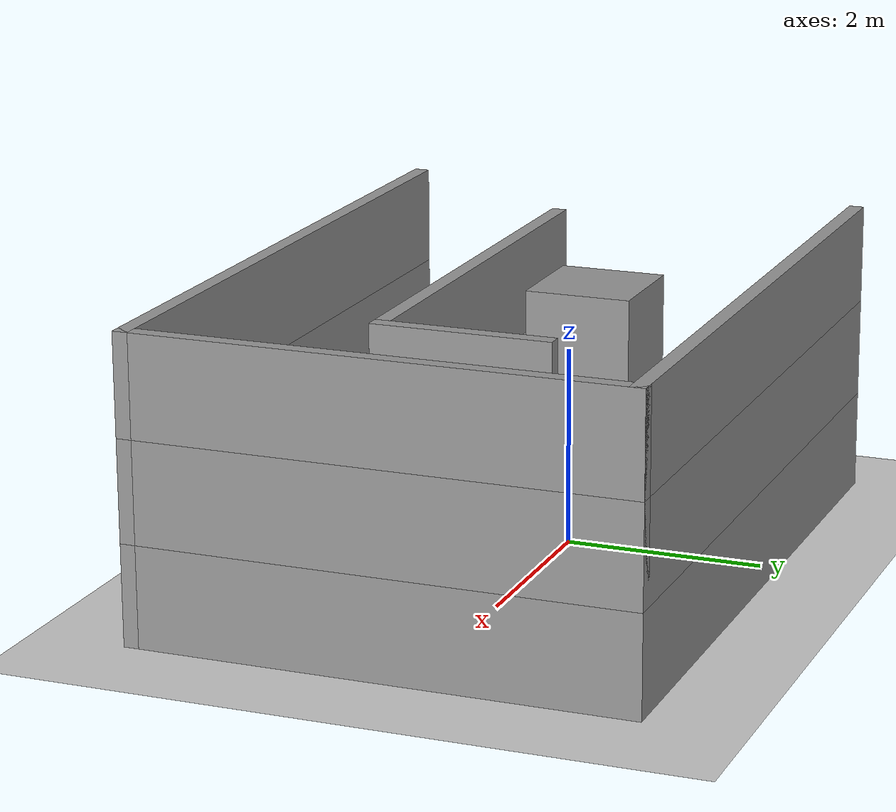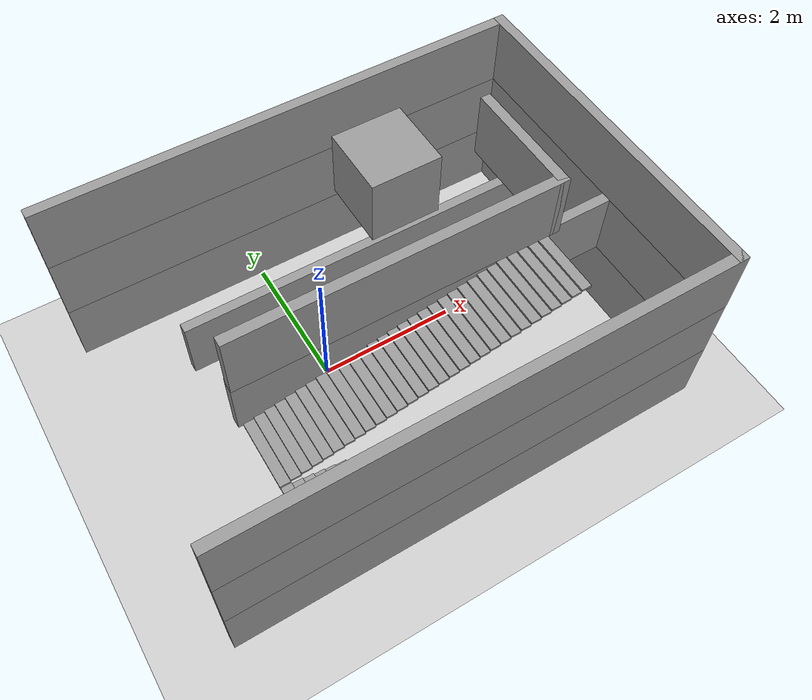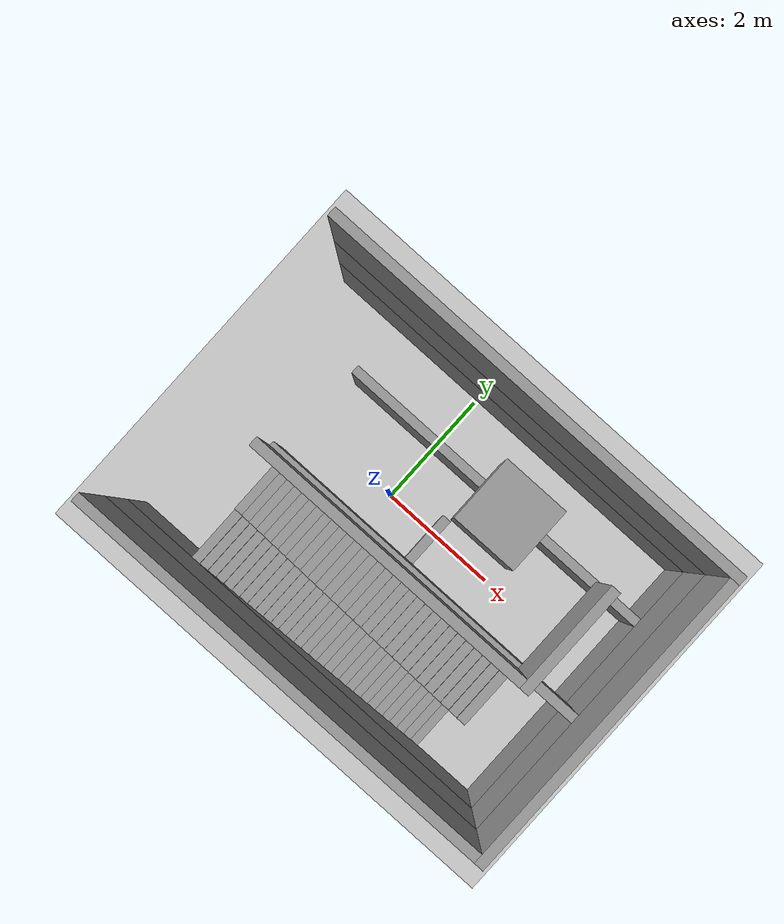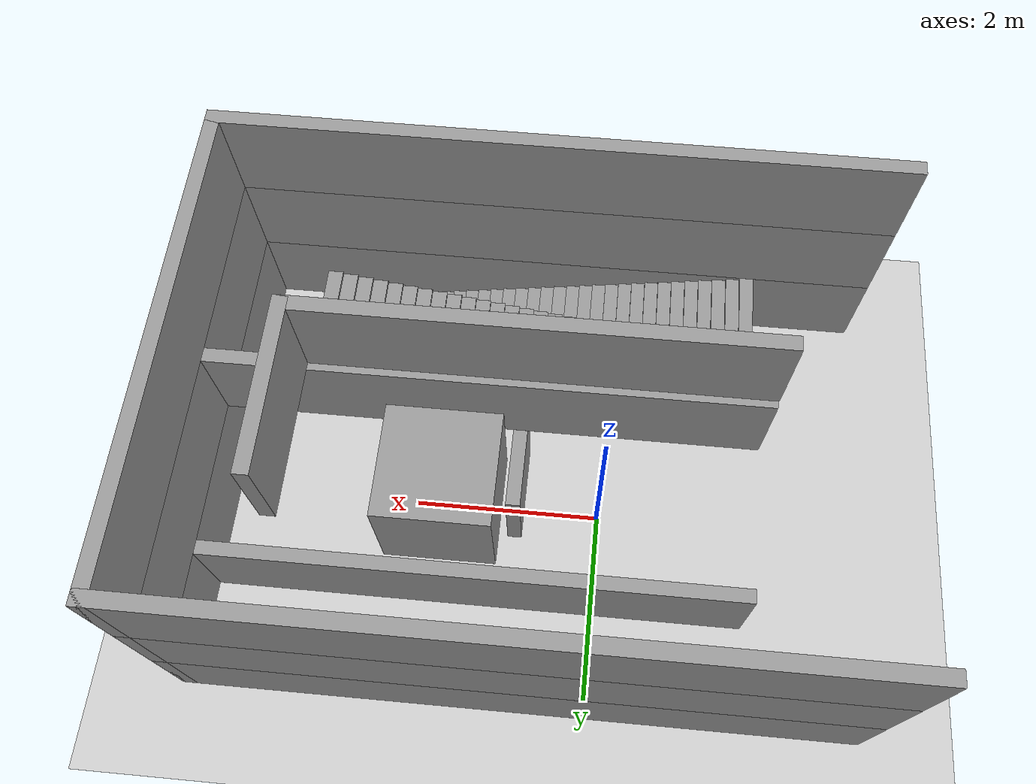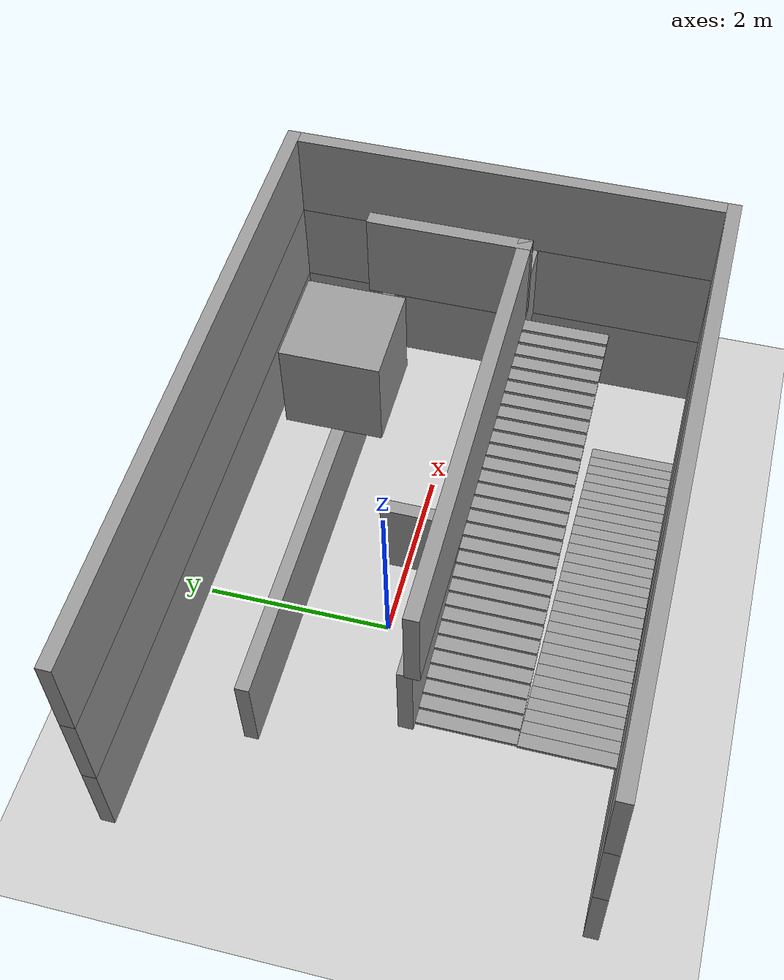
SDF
<sdf version="1.7">
 <world name="default">
  <model name="ground_plane">
   <static>1</static>
   <link name="link">
    <collision name="collision">
     <geometry><plane><normal>0 0 1</normal><size>100 100</size></plane></geometry>
     <surface>
      <contact><collide_bitmask>65535</collide_bitmask></contact>
      <friction><ode><mu>100</mu><mu2>50</mu2></ode></friction>
     </surface>
    </collision>
    <visual name="visual">
     <cast_shadows>0</cast_shadows>
     <geometry><plane><normal>0 0 1</normal><size>100 100</size></plane></geometry>
     <material>
      <script><uri>file://media/materials/scripts/gazebo.material</uri><name>Gazebo/Grey</name></script>
     </material>
    </visual>
   </link>
  </model>
  <model name="3F_building">
   <pose>0.674929 -0.295159 0 0 -0 0</pose>
   <link name="Stairs_7">
    <visual name="Stairs_7_Visual_0">
     <pose>2.21031 -1.90636 0.016667 0 -0 -1.5708</pose>
     <geometry><box><size>1 0.15 0.033333</size></box></geometry>
     <material>
      <script><uri>file://media/materials/scripts/gazebo.material</uri><name>Gazebo/Grey</name></script>
      <ambient>1 1 1 1</ambient>
     </material>
     <meta><layer>0</layer></meta>
    </visual>
    <collision name="Stairs_7_Collision_0">
     <geometry><box><size>1 0.15 0.033333</size></box></geometry>
     <pose>2.21031 -1.90636 0.016667 0 -0 -1.5708</pose>
    </collision>
    <visual name="Stairs_7_Visual_1">
     <pose>2.06031 -1.90636 0.05 0 -0 -1.5708</pose>
     <geometry><box><size>1 0.15 0.033333</size></box></geometry>
     <material>
      <script><uri>file://media/materials/scripts/gazebo.material</uri><name>Gazebo/Grey</name></script>
      <ambient>1 1 1 1</ambient>
     </material>
     <meta><layer>0</layer></meta>
    </visual>
    <collision name="Stairs_7_Collision_1">
     <geometry><box><size>1 0.15 0.033333</size></box></geometry>
     <pose>2.06031 -1.90636 0.05 0 -0 -1.5708</pose>
    </collision>
    <visual name="Stairs_7_Visual_2">
     <pose>1.91031 -1.90636 0.083333 0 -0 -1.5708</pose>
     <geometry><box><size>1 0.15 0.033333</size></box></geometry>
     <material>
      <script><uri>file://media/materials/scripts/gazebo.material</uri><name>Gazebo/Grey</name></script>
      <ambient>1 1 1 1</ambient>
     </material>
     <meta><layer>0</layer></meta>
    </visual>
    <collision name="Stairs_7_Collision_2">
     <geometry><box><size>1 0.15 0.033333</size></box></geometry>
     <pose>1.91031 -1.90636 0.083333 0 -0 -1.5708</pose>
    </collision>
    <visual name="Stairs_7_Visual_3">
     <pose>1.76031 -1.90636 0.116667 0 -0 -1.5708</pose>
     <geometry><box><size>1 0.15 0.033333</size></box></geometry>
     <material>
      <script><uri>file://media/materials/scripts/gazebo.material</uri><name>Gazebo/Grey</name></script>
      <ambient>1 1 1 1</ambient>
     </material>
     <meta><layer>0</layer></meta>
    </visual>
    <collision name="Stairs_7_Collision_3">
     <geometry><box><size>1 0.15 0.033333</size></box></geometry>
     <pose>1.76031 -1.90636 0.116667 0 -0 -1.5708</pose>
    </collision>
    <visual name="Stairs_7_Visual_4">
     <pose>1.61031 -1.90636 0.15 0 -0 -1.5708</pose>
     <geometry><box><size>1 0.15 0.033333</size></box></geometry>
     <material>
      <script><uri>file://media/materials/scripts/gazebo.material</uri><name>Gazebo/Grey</name></script>
      <ambient>1 1 1 1</ambient>
     </material>
     <meta><layer>0</layer></meta>
    </visual>
    <collision name="Stairs_7_Collision_4">
     <geometry><box><size>1 0.15 0.033333</size></box></geometry>
     <pose>1.61031 -1.90636 0.15 0 -0 -1.5708</pose>
    </collision>
    <visual name="Stairs_7_Visual_5">
     <pose>1.46031 -1.90636 0.183333 0 -0 -1.5708</pose>
     <geometry><box><size>1 0.15 0.033333</size></box></geometry>
     <material>
      <script><uri>file://media/materials/scripts/gazebo.material</uri><name>Gazebo/Grey</name></script>
      <ambient>1 1 1 1</ambient>
     </material>
     <meta><layer>0</layer></meta>
    </visual>
    <collision name="Stairs_7_Collision_5">
     <geometry><box><size>1 0.15 0.033333</size></box></geometry>
     <pose>1.46031 -1.90636 0.183333 0 -0 -1.5708</pose>
    </collision>
    <visual name="Stairs_7_Visual_6">
     <pose>1.31031 -1.90636 0.216667 0 -0 -1.5708</pose>
     <geometry><box><size>1 0.15 0.033333</size></box></geometry>
     <material>
      <script><uri>file://media/materials/scripts/gazebo.material</uri><name>Gazebo/Grey</name></script>
      <ambient>1 1 1 1</ambient>
     </material>
     <meta><layer>0</layer></meta>
    </visual>
    <collision name="Stairs_7_Collision_6">
     <geometry><box><size>1 0.15 0.033333</size></box></geometry>
     <pose>1.31031 -1.90636 0.216667 0 -0 -1.5708</pose>
    </collision>
    <visual name="Stairs_7_Visual_7">
     <pose>1.16031 -1.90636 0.25 0 -0 -1.5708</pose>
     <geometry><box><size>1 0.15 0.033333</size></box></geometry>
     <material>
      <script><uri>file://media/materials/scripts/gazebo.material</uri><name>Gazebo/Grey</name></script>
      <ambient>1 1 1 1</ambient>
     </material>
     <meta><layer>0</layer></meta>
    </visual>
    <collision name="Stairs_7_Collision_7">
     <geometry><box><size>1 0.15 0.033333</size></box></geometry>
     <pose>1.16031 -1.90636 0.25 0 -0 -1.5708</pose>
    </collision>
    <visual name="Stairs_7_Visual_8">
     <pose>1.01031 -1.90636 0.283333 0 -0 -1.5708</pose>
     <geometry><box><size>1 0.15 0.033333</size></box></geometry>
     <material>
      <script><uri>file://media/materials/scripts/gazebo.material</uri><name>Gazebo/Grey</name></script>
      <ambient>1 1 1 1</ambient>
     </material>
     <meta><layer>0</layer></meta>
    </visual>
    <collision name="Stairs_7_Collision_8">
     <geometry><box><size>1 0.15 0.033333</size></box></geometry>
     <pose>1.01031 -1.90636 0.283333 0 -0 -1.5708</pose>
    </collision>
    <visual name="Stairs_7_Visual_9">
     <pose>0.860312 -1.90636 0.316667 0 -0 -1.5708</pose>
     <geometry><box><size>1 0.15 0.033333</size></box></geometry>
     <material>
      <script><uri>file://media/materials/scripts/gazebo.material</uri><name>Gazebo/Grey</name></script>
      <ambient>1 1 1 1</ambient>
     </material>
     <meta><layer>0</layer></meta>
    </visual>
    <collision name="Stairs_7_Collision_9">
     <geometry><box><size>1 0.15 0.033333</size></box></geometry>
     <pose>0.860312 -1.90636 0.316667 0 -0 -1.5708</pose>
    </collision>
    <visual name="Stairs_7_Visual_10">
     <pose>0.710312 -1.90636 0.35 0 -0 -1.5708</pose>
     <geometry><box><size>1 0.15 0.033333</size></box></geometry>
     <material>
      <script><uri>file://media/materials/scripts/gazebo.material</uri><name>Gazebo/Grey</name></script>
      <ambient>1 1 1 1</ambient>
     </material>
     <meta><layer>0</layer></meta>
    </visual>
    <collision name="Stairs_7_Collision_10">
     <geometry><box><size>1 0.15 0.033333</size></box></geometry>
     <pose>0.710312 -1.90636 0.35 0 -0 -1.5708</pose>
    </collision>
    <visual name="Stairs_7_Visual_11">
     <pose>0.560312 -1.90636 0.383333 0 -0 -1.5708</pose>
     <geometry><box><size>1 0.15 0.033333</size></box></geometry>
     <material>
      <script><uri>file://media/materials/scripts/gazebo.material</uri><name>Gazebo/Grey</name></script>
      <ambient>1 1 1 1</ambient>
     </material>
     <meta><layer>0</layer></meta>
    </visual>
    <collision name="Stairs_7_Collision_11">
     <geometry><box><size>1 0.15 0.033333</size></box></geometry>
     <pose>0.560312 -1.90636 0.383333 0 -0 -1.5708</pose>
    </collision>
    <visual name="Stairs_7_Visual_12">
     <pose>0.410312 -1.90636 0.416667 0 -0 -1.5708</pose>
     <geometry><box><size>1 0.15 0.033333</size></box></geometry>
     <material>
      <script><uri>file://media/materials/scripts/gazebo.material</uri><name>Gazebo/Grey</name></script>
      <ambient>1 1 1 1</ambient>
     </material>
     <meta><layer>0</layer></meta>
    </visual>
    <collision name="Stairs_7_Collision_12">
     <geometry><box><size>1 0.15 0.033333</size></box></geometry>
     <pose>0.410312 -1.90636 0.416667 0 -0 -1.5708</pose>
    </collision>
    <visual name="Stairs_7_Visual_13">
     <pose>0.260312 -1.90636 0.45 0 -0 -1.5708</pose>
     <geometry><box><size>1 0.15 0.033333</size></box></geometry>
     <material>
      <script><uri>file://media/materials/scripts/gazebo.material</uri><name>Gazebo/Grey</name></script>
      <ambient>1 1 1 1</ambient>
     </material>
     <meta><layer>0</layer></meta>
    </visual>
    <collision name="Stairs_7_Collision_13">
     <geometry><box><size>1 0.15 0.033333</size></box></geometry>
     <pose>0.260312 -1.90636 0.45 0 -0 -1.5708</pose>
    </collision>
    <visual name="Stairs_7_Visual_14">
     <pose>0.110312 -1.90636 0.483333 0 -0 -1.5708</pose>
     <geometry><box><size>1 0.15 0.033333</size></box></geometry>
     <material>
      <script><uri>file://media/materials/scripts/gazebo.material</uri><name>Gazebo/Grey</name></script>
      <ambient>1 1 1 1</ambient>
     </material>
     <meta><layer>0</layer></meta>
    </visual>
    <collision name="Stairs_7_Collision_14">
     <geometry><box><size>1 0.15 0.033333</size></box></geometry>
     <pose>0.110312 -1.90636 0.483333 0 -0 -1.5708</pose>
    </collision>
    <visual name="Stairs_7_Visual_15">
     <pose>-0.039688 -1.90636 0.516667 0 -0 -1.5708</pose>
     <geometry><box><size>1 0.15 0.033333</size></box></geometry>
     <material>
      <script><uri>file://media/materials/scripts/gazebo.material</uri><name>Gazebo/Grey</name></script>
      <ambient>1 1 1 1</ambient>
     </material>
     <meta><layer>0</layer></meta>
    </visual>
    <collision name="Stairs_7_Collision_15">
     <geometry><box><size>1 0.15 0.033333</size></box></geometry>
     <pose>-0.039688 -1.90636 0.516667 0 -0 -1.5708</pose>
    </collision>
    <visual name="Stairs_7_Visual_16">
     <pose>-0.189688 -1.90636 0.55 0 -0 -1.5708</pose>
     <geometry><box><size>1 0.15 0.033333</size></box></geometry>
     <material>
      <script><uri>file://media/materials/scripts/gazebo.material</uri><name>Gazebo/Grey</name></script>
      <ambient>1 1 1 1</ambient>
     </material>
     <meta><layer>0</layer></meta>
    </visual>
    <collision name="Stairs_7_Collision_16">
     <geometry><box><size>1 0.15 0.033333</size></box></geometry>
     <pose>-0.189688 -1.90636 0.55 0 -0 -1.5708</pose>
    </collision>
    <visual name="Stairs_7_Visual_17">
     <pose>-0.339688 -1.90636 0.583333 0 -0 -1.5708</pose>
     <geometry><box><size>1 0.15 0.033333</size></box></geometry>
     <material>
      <script><uri>file://media/materials/scripts/gazebo.material</uri><name>Gazebo/Grey</name></script>
      <ambient>1 1 1 1</ambient>
     </material>
     <meta><layer>0</layer></meta>
    </visual>
    <collision name="Stairs_7_Collision_17">
     <geometry><box><size>1 0.15 0.033333</size></box></geometry>
     <pose>-0.339688 -1.90636 0.583333 0 -0 -1.5708</pose>
    </collision>
    <visual name="Stairs_7_Visual_18">
     <pose>-0.489688 -1.90636 0.616667 0 -0 -1.5708</pose>
     <geometry><box><size>1 0.15 0.033333</size></box></geometry>
     <material>
      <script><uri>file://media/materials/scripts/gazebo.material</uri><name>Gazebo/Grey</name></script>
      <ambient>1 1 1 1</ambient>
     </material>
     <meta><layer>0</layer></meta>
    </visual>
    <collision name="Stairs_7_Collision_18">
     <geometry><box><size>1 0.15 0.033333</size></box></geometry>
     <pose>-0.489688 -1.90636 0.616667 0 -0 -1.5708</pose>
    </collision>
    <visual name="Stairs_7_Visual_19">
     <pose>-0.639688 -1.90636 0.65 0 -0 -1.5708</pose>
     <geometry><box><size>1 0.15 0.033333</size></box></geometry>
     <material>
      <script><uri>file://media/materials/scripts/gazebo.material</uri><name>Gazebo/Grey</name></script>
      <ambient>1 1 1 1</ambient>
     </material>
     <meta><layer>0</layer></meta>
    </visual>
    <collision name="Stairs_7_Collision_19">
     <geometry><box><size>1 0.15 0.033333</size></box></geometry>
     <pose>-0.639688 -1.90636 0.65 0 -0 -1.5708</pose>
    </collision>
    <visual name="Stairs_7_Visual_20">
     <pose>-0.789688 -1.90636 0.683333 0 -0 -1.5708</pose>
     <geometry><box><size>1 0.15 0.033333</size></box></geometry>
     <material>
      <script><uri>file://media/materials/scripts/gazebo.material</uri><name>Gazebo/Grey</name></script>
      <ambient>1 1 1 1</ambient>
     </material>
     <meta><layer>0</layer></meta>
    </visual>
    <collision name="Stairs_7_Collision_20">
     <geometry><box><size>1 0.15 0.033333</size></box></geometry>
     <pose>-0.789688 -1.90636 0.683333 0 -0 -1.5708</pose>
    </collision>
    <visual name="Stairs_7_Visual_21">
     <pose>-0.939688 -1.90636 0.716667 0 -0 -1.5708</pose>
     <geometry><box><size>1 0.15 0.033333</size></box></geometry>
     <material>
      <script><uri>file://media/materials/scripts/gazebo.material</uri><name>Gazebo/Grey</name></script>
      <ambient>1 1 1 1</ambient>
     </material>
     <meta><layer>0</layer></meta>
    </visual>
    <collision name="Stairs_7_Collision_21">
     <geometry><box><size>1 0.15 0.033333</size></box></geometry>
     <pose>-0.939688 -1.90636 0.716667 0 -0 -1.5708</pose>
    </collision>
    <visual name="Stairs_7_Visual_22">
     <pose>-1.08969 -1.90636 0.75 0 -0 -1.5708</pose>
     <geometry><box><size>1 0.15 0.033333</size></box></geometry>
     <material>
      <script><uri>file://media/materials/scripts/gazebo.material</uri><name>Gazebo/Grey</name></script>
      <ambient>1 1 1 1</ambient>
     </material>
     <meta><layer>0</layer></meta>
    </visual>
    <collision name="Stairs_7_Collision_22">
     <geometry><box><size>1 0.15 0.033333</size></box></geometry>
     <pose>-1.08969 -1.90636 0.75 0 -0 -1.5708</pose>
    </collision>
    <visual name="Stairs_7_Visual_23">
     <pose>-1.23969 -1.90636 0.783333 0 -0 -1.5708</pose>
     <geometry><box><size>1 0.15 0.033333</size></box></geometry>
     <material>
      <script><uri>file://media/materials/scripts/gazebo.material</uri><name>Gazebo/Grey</name></script>
      <ambient>1 1 1 1</ambient>
     </material>
     <meta><layer>0</layer></meta>
    </visual>
    <collision name="Stairs_7_Collision_23">
     <geometry><box><size>1 0.15 0.033333</size></box></geometry>
     <pose>-1.23969 -1.90636 0.783333 0 -0 -1.5708</pose>
    </collision>
    <visual name="Stairs_7_Visual_24">
     <pose>-1.38969 -1.90636 0.816667 0 -0 -1.5708</pose>
     <geometry><box><size>1 0.15 0.033333</size></box></geometry>
     <material>
      <script><uri>file://media/materials/scripts/gazebo.material</uri><name>Gazebo/Grey</name></script>
      <ambient>1 1 1 1</ambient>
     </material>
     <meta><layer>0</layer></meta>
    </visual>
    <collision name="Stairs_7_Collision_24">
     <geometry><box><size>1 0.15 0.033333</size></box></geometry>
     <pose>-1.38969 -1.90636 0.816667 0 -0 -1.5708</pose>
    </collision>
    <visual name="Stairs_7_Visual_25">
     <pose>-1.53969 -1.90636 0.85 0 -0 -1.5708</pose>
     <geometry><box><size>1 0.15 0.033333</size></box></geometry>
     <material>
      <script><uri>file://media/materials/scripts/gazebo.material</uri><name>Gazebo/Grey</name></script>
      <ambient>1 1 1 1</ambient>
     </material>
     <meta><layer>0</layer></meta>
    </visual>
    <collision name="Stairs_7_Collision_25">
     <geometry><box><size>1 0.15 0.033333</size></box></geometry>
     <pose>-1.53969 -1.90636 0.85 0 -0 -1.5708</pose>
    </collision>
    <visual name="Stairs_7_Visual_26">
     <pose>-1.68969 -1.90636 0.883333 0 -0 -1.5708</pose>
     <geometry><box><size>1 0.15 0.033333</size></box></geometry>
     <material>
      <script><uri>file://media/materials/scripts/gazebo.material</uri><name>Gazebo/Grey</name></script>
      <ambient>1 1 1 1</ambient>
     </material>
     <meta><layer>0</layer></meta>
    </visual>
    <collision name="Stairs_7_Collision_26">
     <geometry><box><size>1 0.15 0.033333</size></box></geometry>
     <pose>-1.68969 -1.90636 0.883333 0 -0 -1.5708</pose>
    </collision>
    <visual name="Stairs_7_Visual_27">
     <pose>-1.83969 -1.90636 0.916667 0 -0 -1.5708</pose>
     <geometry><box><size>1 0.15 0.033333</size></box></geometry>
     <material>
      <script><uri>file://media/materials/scripts/gazebo.material</uri><name>Gazebo/Grey</name></script>
      <ambient>1 1 1 1</ambient>
     </material>
     <meta><layer>0</layer></meta>
    </visual>
    <collision name="Stairs_7_Collision_27">
     <geometry><box><size>1 0.15 0.033333</size></box></geometry>
     <pose>-1.83969 -1.90636 0.916667 0 -0 -1.5708</pose>
    </collision>
    <visual name="Stairs_7_Visual_28">
     <pose>-1.98969 -1.90636 0.95 0 -0 -1.5708</pose>
     <geometry><box><size>1 0.15 0.033333</size></box></geometry>
     <material>
      <script><uri>file://media/materials/scripts/gazebo.material</uri><name>Gazebo/Grey</name></script>
      <ambient>1 1 1 1</ambient>
     </material>
     <meta><layer>0</layer></meta>
    </visual>
    <collision name="Stairs_7_Collision_28">
     <geometry><box><size>1 0.15 0.033333</size></box></geometry>
     <pose>-1.98969 -1.90636 0.95 0 -0 -1.5708</pose>
    </collision>
    <visual name="Stairs_7_Visual_29">
     <pose>-2.13969 -1.90636 0.983333 0 -0 -1.5708</pose>
     <geometry><box><size>1 0.15 0.033333</size></box></geometry>
     <material>
      <script><uri>file://media/materials/scripts/gazebo.material</uri><name>Gazebo/Grey</name></script>
      <ambient>1 1 1 1</ambient>
     </material>
     <meta><layer>0</layer></meta>
    </visual>
    <collision name="Stairs_7_Collision_29">
     <geometry><box><size>1 0.15 0.033333</size></box></geometry>
     <pose>-2.13969 -1.90636 0.983333 0 -0 -1.5708</pose>
    </collision>
   </link>
   <link name="Stairs_9">
    <visual name="Stairs_9_Visual_0">
     <pose>-2.14579 -0.906519 1.01667 0 -0 1.5708</pose>
     <geometry><box><size>1 0.15 0.033333</size></box></geometry>
     <material>
      <script><uri>file://media/materials/scripts/gazebo.material</uri><name>Gazebo/Grey</name></script>
      <ambient>1 1 1 1</ambient>
     </material>
     <meta><layer>1</layer></meta>
    </visual>
    <collision name="Stairs_9_Collision_0">
     <geometry><box><size>1 0.15 0.033333</size></box></geometry>
     <pose>-2.14579 -0.906519 1.01667 0 -0 1.5708</pose>
    </collision>
    <visual name="Stairs_9_Visual_1">
     <pose>-1.99579 -0.906519 1.05 0 -0 1.5708</pose>
     <geometry><box><size>1 0.15 0.033333</size></box></geometry>
     <material>
      <script><uri>file://media/materials/scripts/gazebo.material</uri><name>Gazebo/Grey</name></script>
      <ambient>1 1 1 1</ambient>
     </material>
     <meta><layer>1</layer></meta>
    </visual>
    <collision name="Stairs_9_Collision_1">
     <geometry><box><size>1 0.15 0.033333</size></box></geometry>
     <pose>-1.99579 -0.906519 1.05 0 -0 1.5708</pose>
    </collision>
    <visual name="Stairs_9_Visual_2">
     <pose>-1.84579 -0.906519 1.08333 0 -0 1.5708</pose>
     <geometry><box><size>1 0.15 0.033333</size></box></geometry>
     <material>
      <script><uri>file://media/materials/scripts/gazebo.material</uri><name>Gazebo/Grey</name></script>
      <ambient>1 1 1 1</ambient>
     </material>
     <meta><layer>1</layer></meta>
    </visual>
    <collision name="Stairs_9_Collision_2">
     <geometry><box><size>1 0.15 0.033333</size></box></geometry>
     <pose>-1.84579 -0.906519 1.08333 0 -0 1.5708</pose>
    </collision>
    <visual name="Stairs_9_Visual_3">
     <pose>-1.69579 -0.906519 1.11667 0 -0 1.5708</pose>
     <geometry><box><size>1 0.15 0.033333</size></box></geometry>
     <material>
      <script><uri>file://media/materials/scripts/gazebo.material</uri><name>Gazebo/Grey</name></script>
      <ambient>1 1 1 1</ambient>
     </material>
     <meta><layer>1</layer></meta>
    </visual>
    <collision name="Stairs_9_Collision_3">
     <geometry><box><size>1 0.15 0.033333</size></box></geometry>
     <pose>-1.69579 -0.906519 1.11667 0 -0 1.5708</pose>
    </collision>
    <visual name="Stairs_9_Visual_4">
     <pose>-1.54579 -0.906519 1.15 0 -0 1.5708</pose>
     <geometry><box><size>1 0.15 0.033333</size></box></geometry>
     <material>
      <script><uri>file://media/materials/scripts/gazebo.material</uri><name>Gazebo/Grey</name></script>
      <ambient>1 1 1 1</ambient>
     </material>
     <meta><layer>1</layer></meta>
    </visual>
    <collision name="Stairs_9_Collision_4">
     <geometry><box><size>1 0.15 0.033333</size></box></geometry>
     <pose>-1.54579 -0.906519 1.15 0 -0 1.5708</pose>
    </collision>
    <visual name="Stairs_9_Visual_5">
     <pose>-1.39579 -0.906519 1.18333 0 -0 1.5708</pose>
     <geometry><box><size>1 0.15 0.033333</size></box></geometry>
     <material>
      <script><uri>file://media/materials/scripts/gazebo.material</uri><name>Gazebo/Grey</name></script>
      <ambient>1 1 1 1</ambient>
     </material>
     <meta><layer>1</layer></meta>
    </visual>
    <collision name="Stairs_9_Collision_5">
     <geometry><box><size>1 0.15 0.033333</size></box></geometry>
     <pose>-1.39579 -0.906519 1.18333 0 -0 1.5708</pose>
    </collision>
    <visual name="Stairs_9_Visual_6">
     <pose>-1.24579 -0.906519 1.21667 0 -0 1.5708</pose>
     <geometry><box><size>1 0.15 0.033333</size></box></geometry>
     <material>
      <script><uri>file://media/materials/scripts/gazebo.material</uri><name>Gazebo/Grey</name></script>
      <ambient>1 1 1 1</ambient>
     </material>
     <meta><layer>1</layer></meta>
    </visual>
    <collision name="Stairs_9_Collision_6">
     <geometry><box><size>1 0.15 0.033333</size></box></geometry>
     <pose>-1.24579 -0.906519 1.21667 0 -0 1.5708</pose>
    </collision>
    <visual name="Stairs_9_Visual_7">
     <pose>-1.09579 -0.906519 1.25 0 -0 1.5708</pose>
     <geometry><box><size>1 0.15 0.033333</size></box></geometry>
     <material>
      <script><uri>file://media/materials/scripts/gazebo.material</uri><name>Gazebo/Grey</name></script>
      <ambient>1 1 1 1</ambient>
     </material>
     <meta><layer>1</layer></meta>
    </visual>
    <collision name="Stairs_9_Collision_7">
     <geometry><box><size>1 0.15 0.033333</size></box></geometry>
     <pose>-1.09579 -0.906519 1.25 0 -0 1.5708</pose>
    </collision>
    <visual name="Stairs_9_Visual_8">
     <pose>-0.945791 -0.906519 1.28333 0 -0 1.5708</pose>
     <geometry><box><size>1 0.15 0.033333</size></box></geometry>
     <material>
      <script><uri>file://media/materials/scripts/gazebo.material</uri><name>Gazebo/Grey</name></script>
      <ambient>1 1 1 1</ambient>
     </material>
     <meta><layer>1</layer></meta>
    </visual>
    <collision name="Stairs_9_Collision_8">
     <geometry><box><size>1 0.15 0.033333</size></box></geometry>
     <pose>-0.945791 -0.906519 1.28333 0 -0 1.5708</pose>
    </collision>
    <visual name="Stairs_9_Visual_9">
     <pose>-0.795791 -0.906519 1.31667 0 -0 1.5708</pose>
     <geometry><box><size>1 0.15 0.033333</size></box></geometry>
     <material>
      <script><uri>file://media/materials/scripts/gazebo.material</uri><name>Gazebo/Grey</name></script>
      <ambient>1 1 1 1</ambient>
     </material>
     <meta><layer>1</layer></meta>
    </visual>
    <collision name="Stairs_9_Collision_9">
     <geometry><box><size>1 0.15 0.033333</size></box></geometry>
     <pose>-0.795791 -0.906519 1.31667 0 -0 1.5708</pose>
    </collision>
    <visual name="Stairs_9_Visual_10">
     <pose>-0.645791 -0.906519 1.35 0 -0 1.5708</pose>
     <geometry><box><size>1 0.15 0.033333</size></box></geometry>
     <material>
      <script><uri>file://media/materials/scripts/gazebo.material</uri><name>Gazebo/Grey</name></script>
      <ambient>1 1 1 1</ambient>
     </material>
     <meta><layer>1</layer></meta>
    </visual>
    <collision name="Stairs_9_Collision_10">
     <geometry><box><size>1 0.15 0.033333</size></box></geometry>
     <pose>-0.645791 -0.906519 1.35 0 -0 1.5708</pose>
    </collision>
    <visual name="Stairs_9_Visual_11">
     <pose>-0.495791 -0.906519 1.38333 0 -0 1.5708</pose>
     <geometry><box><size>1 0.15 0.033333</size></box></geometry>
     <material>
      <script><uri>file://media/materials/scripts/gazebo.material</uri><name>Gazebo/Grey</name></script>
      <ambient>1 1 1 1</ambient>
     </material>
     <meta><layer>1</layer></meta>
    </visual>
    <collision name="Stairs_9_Collision_11">
     <geometry><box><size>1 0.15 0.033333</size></box></geometry>
     <pose>-0.495791 -0.906519 1.38333 0 -0 1.5708</pose>
    </collision>
    <visual name="Stairs_9_Visual_12">
     <pose>-0.345791 -0.906519 1.41667 0 -0 1.5708</pose>
     <geometry><box><size>1 0.15 0.033333</size></box></geometry>
     <material>
      <script><uri>file://media/materials/scripts/gazebo.material</uri><name>Gazebo/Grey</name></script>
      <ambient>1 1 1 1</ambient>
     </material>
     <meta><layer>1</layer></meta>
    </visual>
    <collision name="Stairs_9_Collision_12">
     <geometry><box><size>1 0.15 0.033333</size></box></geometry>
     <pose>-0.345791 -0.906519 1.41667 0 -0 1.5708</pose>
    </collision>
    <visual name="Stairs_9_Visual_13">
     <pose>-0.195791 -0.906519 1.45 0 -0 1.5708</pose>
     <geometry><box><size>1 0.15 0.033333</size></box></geometry>
     <material>
      <script><uri>file://media/materials/scripts/gazebo.material</uri><name>Gazebo/Grey</name></script>
      <ambient>1 1 1 1</ambient>
     </material>
     <meta><layer>1</layer></meta>
    </visual>
    <collision name="Stairs_9_Collision_13">
     <geometry><box><size>1 0.15 0.033333</size></box></geometry>
     <pose>-0.195791 -0.906519 1.45 0 -0 1.5708</pose>
    </collision>
    <visual name="Stairs_9_Visual_14">
     <pose>-0.045791 -0.906519 1.48333 0 -0 1.5708</pose>
     <geometry><box><size>1 0.15 0.033333</size></box></geometry>
     <material>
      <script><uri>file://media/materials/scripts/gazebo.material</uri><name>Gazebo/Grey</name></script>
      <ambient>1 1 1 1</ambient>
     </material>
     <meta><layer>1</layer></meta>
    </visual>
    <collision name="Stairs_9_Collision_14">
     <geometry><box><size>1 0.15 0.033333</size></box></geometry>
     <pose>-0.045791 -0.906519 1.48333 0 -0 1.5708</pose>
    </collision>
    <visual name="Stairs_9_Visual_15">
     <pose>0.104209 -0.906519 1.51667 0 -0 1.5708</pose>
     <geometry><box><size>1 0.15 0.033333</size></box></geometry>
     <material>
      <script><uri>file://media/materials/scripts/gazebo.material</uri><name>Gazebo/Grey</name></script>
      <ambient>1 1 1 1</ambient>
     </material>
     <meta><layer>1</layer></meta>
    </visual>
    <collision name="Stairs_9_Collision_15">
     <geometry><box><size>1 0.15 0.033333</size></box></geometry>
     <pose>0.104209 -0.906519 1.51667 0 -0 1.5708</pose>
    </collision>
    <visual name="Stairs_9_Visual_16">
     <pose>0.254209 -0.906519 1.55 0 -0 1.5708</pose>
     <geometry><box><size>1 0.15 0.033333</size></box></geometry>
     <material>
      <script><uri>file://media/materials/scripts/gazebo.material</uri><name>Gazebo/Grey</name></script>
      <ambient>1 1 1 1</ambient>
     </material>
     <meta><layer>1</layer></meta>
    </visual>
    <collision name="Stairs_9_Collision_16">
     <geometry><box><size>1 0.15 0.033333</size></box></geometry>
     <pose>0.254209 -0.906519 1.55 0 -0 1.5708</pose>
    </collision>
    <visual name="Stairs_9_Visual_17">
     <pose>0.404209 -0.906519 1.58333 0 -0 1.5708</pose>
     <geometry><box><size>1 0.15 0.033333</size></box></geometry>
     <material>
      <script><uri>file://media/materials/scripts/gazebo.material</uri><name>Gazebo/Grey</name></script>
      <ambient>1 1 1 1</ambient>
     </material>
     <meta><layer>1</layer></meta>
    </visual>
    <collision name="Stairs_9_Collision_17">
     <geometry><box><size>1 0.15 0.033333</size></box></geometry>
     <pose>0.404209 -0.906519 1.58333 0 -0 1.5708</pose>
    </collision>
    <visual name="Stairs_9_Visual_18">
     <pose>0.554209 -0.906519 1.61667 0 -0 1.5708</pose>
     <geometry><box><size>1 0.15 0.033333</size></box></geometry>
     <material>
      <script><uri>file://media/materials/scripts/gazebo.material</uri><name>Gazebo/Grey</name></script>
      <ambient>1 1 1 1</ambient>
     </material>
     <meta><layer>1</layer></meta>
    </visual>
    <collision name="Stairs_9_Collision_18">
     <geometry><box><size>1 0.15 0.033333</size></box></geometry>
     <pose>0.554209 -0.906519 1.61667 0 -0 1.5708</pose>
    </collision>
    <visual name="Stairs_9_Visual_19">
     <pose>0.704209 -0.906519 1.65 0 -0 1.5708</pose>
     <geometry><box><size>1 0.15 0.033333</size></box></geometry>
     <material>
      <script><uri>file://media/materials/scripts/gazebo.material</uri><name>Gazebo/Grey</name></script>
      <ambient>1 1 1 1</ambient>
     </material>
     <meta><layer>1</layer></meta>
    </visual>
    <collision name="Stairs_9_Collision_19">
     <geometry><box><size>1 0.15 0.033333</size></box></geometry>
     <pose>0.704209 -0.906519 1.65 0 -0 1.5708</pose>
    </collision>
    <visual name="Stairs_9_Visual_20">
     <pose>0.854209 -0.906519 1.68333 0 -0 1.5708</pose>
     <geometry><box><size>1 0.15 0.033333</size></box></geometry>
     <material>
      <script><uri>file://media/materials/scripts/gazebo.material</uri><name>Gazebo/Grey</name></script>
      <ambient>1 1 1 1</ambient>
     </material>
     <meta><layer>1</layer></meta>
    </visual>
    <collision name="Stairs_9_Collision_20">
     <geometry><box><size>1 0.15 0.033333</size></box></geometry>
     <pose>0.854209 -0.906519 1.68333 0 -0 1.5708</pose>
    </collision>
    <visual name="Stairs_9_Visual_21">
     <pose>1.00421 -0.906519 1.71667 0 -0 1.5708</pose>
     <geometry><box><size>1 0.15 0.033333</size></box></geometry>
     <material>
      <script><uri>file://media/materials/scripts/gazebo.material</uri><name>Gazebo/Grey</name></script>
      <ambient>1 1 1 1</ambient>
     </material>
     <meta><layer>1</layer></meta>
    </visual>
    <collision name="Stairs_9_Collision_21">
     <geometry><box><size>1 0.15 0.033333</size></box></geometry>
     <pose>1.00421 -0.906519 1.71667 0 -0 1.5708</pose>
    </collision>
    <visual name="Stairs_9_Visual_22">
     <pose>1.15421 -0.906519 1.75 0 -0 1.5708</pose>
     <geometry><box><size>1 0.15 0.033333</size></box></geometry>
     <material>
      <script><uri>file://media/materials/scripts/gazebo.material</uri><name>Gazebo/Grey</name></script>
      <ambient>1 1 1 1</ambient>
     </material>
     <meta><layer>1</layer></meta>
    </visual>
    <collision name="Stairs_9_Collision_22">
     <geometry><box><size>1 0.15 0.033333</size></box></geometry>
     <pose>1.15421 -0.906519 1.75 0 -0 1.5708</pose>
    </collision>
    <visual name="Stairs_9_Visual_23">
     <pose>1.30421 -0.906519 1.78333 0 -0 1.5708</pose>
     <geometry><box><size>1 0.15 0.033333</size></box></geometry>
     <material>
      <script><uri>file://media/materials/scripts/gazebo.material</uri><name>Gazebo/Grey</name></script>
      <ambient>1 1 1 1</ambient>
     </material>
     <meta><layer>1</layer></meta>
    </visual>
    <collision name="Stairs_9_Collision_23">
     <geometry><box><size>1 0.15 0.033333</size></box></geometry>
     <pose>1.30421 -0.906519 1.78333 0 -0 1.5708</pose>
    </collision>
    <visual name="Stairs_9_Visual_24">
     <pose>1.45421 -0.906519 1.81667 0 -0 1.5708</pose>
     <geometry><box><size>1 0.15 0.033333</size></box></geometry>
     <material>
      <script><uri>file://media/materials/scripts/gazebo.material</uri><name>Gazebo/Grey</name></script>
      <ambient>1 1 1 1</ambient>
     </material>
     <meta><layer>1</layer></meta>
    </visual>
    <collision name="Stairs_9_Collision_24">
     <geometry><box><size>1 0.15 0.033333</size></box></geometry>
     <pose>1.45421 -0.906519 1.81667 0 -0 1.5708</pose>
    </collision>
    <visual name="Stairs_9_Visual_25">
     <pose>1.60421 -0.906519 1.85 0 -0 1.5708</pose>
     <geometry><box><size>1 0.15 0.033333</size></box></geometry>
     <material>
      <script><uri>file://media/materials/scripts/gazebo.material</uri><name>Gazebo/Grey</name></script>
      <ambient>1 1 1 1</ambient>
     </material>
     <meta><layer>1</layer></meta>
    </visual>
    <collision name="Stairs_9_Collision_25">
     <geometry><box><size>1 0.15 0.033333</size></box></geometry>
     <pose>1.60421 -0.906519 1.85 0 -0 1.5708</pose>
    </collision>
    <visual name="Stairs_9_Visual_26">
     <pose>1.75421 -0.906519 1.88333 0 -0 1.5708</pose>
     <geometry><box><size>1 0.15 0.033333</size></box></geometry>
     <material>
      <script><uri>file://media/materials/scripts/gazebo.material</uri><name>Gazebo/Grey</name></script>
      <ambient>1 1 1 1</ambient>
     </material>
     <meta><layer>1</layer></meta>
    </visual>
    <collision name="Stairs_9_Collision_26">
     <geometry><box><size>1 0.15 0.033333</size></box></geometry>
     <pose>1.75421 -0.906519 1.88333 0 -0 1.5708</pose>
    </collision>
    <visual name="Stairs_9_Visual_27">
     <pose>1.90421 -0.906519 1.91667 0 -0 1.5708</pose>
     <geometry><box><size>1 0.15 0.033333</size></box></geometry>
     <material>
      <script><uri>file://media/materials/scripts/gazebo.material</uri><name>Gazebo/Grey</name></script>
      <ambient>1 1 1 1</ambient>
     </material>
     <meta><layer>1</layer></meta>
    </visual>
    <collision name="Stairs_9_Collision_27">
     <geometry><box><size>1 0.15 0.033333</size></box></geometry>
     <pose>1.90421 -0.906519 1.91667 0 -0 1.5708</pose>
    </collision>
    <visual name="Stairs_9_Visual_28">
     <pose>2.05421 -0.906519 1.95 0 -0 1.5708</pose>
     <geometry><box><size>1 0.15 0.033333</size></box></geometry>
     <material>
      <script><uri>file://media/materials/scripts/gazebo.material</uri><name>Gazebo/Grey</name></script>
      <ambient>1 1 1 1</ambient>
     </material>
     <meta><layer>1</layer></meta>
    </visual>
    <collision name="Stairs_9_Collision_28">
     <geometry><box><size>1 0.15 0.033333</size></box></geometry>
     <pose>2.05421 -0.906519 1.95 0 -0 1.5708</pose>
    </collision>
    <visual name="Stairs_9_Visual_29">
     <pose>2.20421 -0.906519 1.98333 0 -0 1.5708</pose>
     <geometry><box><size>1 0.15 0.033333</size></box></geometry>
     <material>
      <script><uri>file://media/materials/scripts/gazebo.material</uri><name>Gazebo/Grey</name></script>
      <ambient>1 1 1 1</ambient>
     </material>
     <meta><layer>1</layer></meta>
    </visual>
    <collision name="Stairs_9_Collision_29">
     <geometry><box><size>1 0.15 0.033333</size></box></geometry>
     <pose>2.20421 -0.906519 1.98333 0 -0 1.5708</pose>
    </collision>
   </link>
   <link name="Wall_106">
    <collision name="Wall_106_Collision">
     <geometry><box><size>1.75 0.15 1</size></box></geometry>
     <pose>0 0 0.5 0 -0 0</pose>
    </collision>
    <visual name="Wall_106_Visual">
     <pose>0 0 0.5 0 -0 0</pose>
     <geometry><box><size>1.75 0.15 1</size></box></geometry>
     <material>
      <script><uri>file://media/materials/scripts/gazebo.material</uri><name>Gazebo/Grey</name></script>
      <ambient>1 1 1 1</ambient>
     </material>
     <meta><layer>2</layer></meta>
    </visual>
    <pose>2.376 0.3885 2 0 -0 1.5708</pose>
   </link>
   <link name="Wall_18">
    <collision name="Wall_18_Collision">
     <geometry><box><size>7 0.15 1</size></box></geometry>
     <pose>0 0 0.5 0 -0 0</pose>
    </collision>
    <visual name="Wall_18_Visual">
     <pose>0 0 0.5 0 -0 0</pose>
     <geometry><box><size>7 0.15 1</size></box></geometry>
     <material>
      <script><uri>file://media/materials/scripts/gazebo.material</uri><name>Gazebo/Grey</name></script>
      <ambient>1 1 1 1</ambient>
     </material>
     <meta><layer>0</layer></meta>
    </visual>
    <pose>0 2.4115 0 0 -0 0</pose>
   </link>
   <link name="Wall_19">
    <collision name="Wall_19_Collision">
     <geometry><box><size>5 0.15 1</size></box></geometry>
     <pose>0 0 0.5 0 -0 0</pose>
    </collision>
    <visual name="Wall_19_Visual">
     <pose>0 0 0.5 0 -0 0</pose>
     <geometry><box><size>5 0.15 1</size></box></geometry>
     <material>
      <script><uri>file://media/materials/scripts/gazebo.material</uri><name>Gazebo/Grey</name></script>
      <ambient>1 1 1 1</ambient>
     </material>
     <meta><layer>0</layer></meta>
    </visual>
    <pose>3.425 -0.0135 0 0 -0 -1.5708</pose>
   </link>
   <link name="Wall_20">
    <collision name="Wall_20_Collision">
     <geometry><box><size>7 0.15 1</size></box></geometry>
     <pose>0 0 0.5 0 -0 0</pose>
    </collision>
    <visual name="Wall_20_Visual">
     <pose>0 0 0.5 0 -0 0</pose>
     <geometry><box><size>7 0.15 1</size></box></geometry>
     <material>
      <script><uri>file://media/materials/scripts/gazebo.material</uri><name>Gazebo/Grey</name></script>
      <ambient>1 1 1 1</ambient>
     </material>
     <meta><layer>0</layer></meta>
    </visual>
    <pose>0 -2.4385 0 0 -0 3.14159</pose>
   </link>
   <link name="Wall_42">
    <collision name="Wall_42_Collision">
     <geometry><box><size>5.75 0.15 1</size></box></geometry>
     <pose>0 0 0.5 0 -0 0</pose>
    </collision>
    <visual name="Wall_42_Visual">
     <pose>0 0 0.5 0 -0 0</pose>
     <geometry><box><size>5.75 0.15 1</size></box></geometry>
     <material>
      <script><uri>file://media/materials/scripts/gazebo.material</uri><name>Gazebo/Grey</name></script>
      <ambient>1 1 1 1</ambient>
     </material>
     <meta><layer>0</layer></meta>
    </visual>
    <pose>0.595 1.3205 0 0 -0 0</pose>
   </link>
   <link name="Wall_48">
    <collision name="Wall_48_Collision">
     <geometry><box><size>1.04373 0.15 1</size></box></geometry>
     <pose>0 0 0.5 0 -0 0</pose>
    </collision>
    <visual name="Wall_48_Visual">
     <pose>0 0 0.5 0 -0 0</pose>
     <geometry><box><size>1.04373 0.15 1</size></box></geometry>
     <material>
      <script><uri>file://media/materials/scripts/gazebo.material</uri><name>Gazebo/Grey</name></script>
      <ambient>1 1 1 1</ambient>
     </material>
     <meta><layer>0</layer></meta>
    </visual>
    <pose>0.214 0.0645 0 0 -0 1.5708</pose>
   </link>
   <link name="Wall_73">
    <collision name="Wall_73_Collision">
     <geometry><box><size>7 0.15 1</size></box></geometry>
     <pose>0 0 0.5 0 -0 0</pose>
    </collision>
    <visual name="Wall_73_Visual">
     <pose>0 0 0.5 0 -0 0</pose>
     <geometry><box><size>7 0.15 1</size></box></geometry>
     <material>
      <script><uri>file://media/materials/scripts/gazebo.material</uri><name>Gazebo/Grey</name></script>
      <ambient>1 1 1 1</ambient>
     </material>
     <meta><layer>1</layer></meta>
    </visual>
    <pose>0 2.4115 1 0 -0 0</pose>
   </link>
   <link name="Wall_74">
    <collision name="Wall_74_Collision">
     <geometry><box><size>5 0.15 1</size></box></geometry>
     <pose>0 0 0.5 0 -0 0</pose>
    </collision>
    <visual name="Wall_74_Visual">
     <pose>0 0 0.5 0 -0 0</pose>
     <geometry><box><size>5 0.15 1</size></box></geometry>
     <material>
      <script><uri>file://media/materials/scripts/gazebo.material</uri><name>Gazebo/Grey</name></script>
      <ambient>1 1 1 1</ambient>
     </material>
     <meta><layer>1</layer></meta>
    </visual>
    <pose>3.425 -0.0135 1 0 -0 -1.5708</pose>
   </link>
   <link name="Wall_75">
    <collision name="Wall_75_Collision">
     <geometry><box><size>7 0.15 1</size></box></geometry>
     <pose>0 0 0.5 0 -0 0</pose>
    </collision>
    <visual name="Wall_75_Visual">
     <pose>0 0 0.5 0 -0 0</pose>
     <geometry><box><size>7 0.15 1</size></box></geometry>
     <material>
      <script><uri>file://media/materials/scripts/gazebo.material</uri><name>Gazebo/Grey</name></script>
      <ambient>1 1 1 1</ambient>
     </material>
     <meta><layer>1</layer></meta>
    </visual>
    <pose>0 -2.4385 1 0 -0 3.14159</pose>
   </link>
   <link name="Wall_88">
    <collision name="Wall_88_Collision">
     <geometry><box><size>5.75 0.15 1</size></box></geometry>
     <pose>0 0 0.5 0 -0 0</pose>
    </collision>
    <visual name="Wall_88_Visual">
     <pose>0 0 0.5 0 -0 0</pose>
     <geometry><box><size>5.75 0.15 1</size></box></geometry>
     <material>
      <script><uri>file://media/materials/scripts/gazebo.material</uri><name>Gazebo/Grey</name></script>
      <ambient>1 1 1 1</ambient>
     </material>
     <meta><layer>1</layer></meta>
    </visual>
    <pose>0.589 -0.3345 1 0 -0 0</pose>
   </link>
   <link name="Wall_93">
    <collision name="Wall_93_Collision">
     <geometry><box><size>7 0.15 1</size></box></geometry>
     <pose>0 0 0.5 0 -0 0</pose>
    </collision>
    <visual name="Wall_93_Visual">
     <pose>0 0 0.5 0 -0 0</pose>
     <geometry><box><size>7 0.15 1</size></box></geometry>
     <material>
      <script><uri>file://media/materials/scripts/gazebo.material</uri><name>Gazebo/Grey</name></script>
      <ambient>1 1 1 1</ambient>
     </material>
     <meta><layer>2</layer></meta>
    </visual>
    <pose>0 2.4115 2 0 -0 0</pose>
   </link>
   <link name="Wall_94">
    <collision name="Wall_94_Collision">
     <geometry><box><size>5 0.15 1</size></box></geometry>
     <pose>0 0 0.5 0 -0 0</pose>
    </collision>
    <visual name="Wall_94_Visual">
     <pose>0 0 0.5 0 -0 0</pose>
     <geometry><box><size>5 0.15 1</size></box></geometry>
     <material>
      <script><uri>file://media/materials/scripts/gazebo.material</uri><name>Gazebo/Grey</name></script>
      <ambient>1 1 1 1</ambient>
     </material>
     <meta><layer>2</layer></meta>
    </visual>
    <pose>3.425 -0.0135 2 0 -0 -1.5708</pose>
   </link>
   <link name="Wall_95">
    <collision name="Wall_95_Collision">
     <geometry><box><size>7 0.15 1</size></box></geometry>
     <pose>0 0 0.5 0 -0 0</pose>
    </collision>
    <visual name="Wall_95_Visual">
     <pose>0 0 0.5 0 -0 0</pose>
     <geometry><box><size>7 0.15 1</size></box></geometry>
     <material>
      <script><uri>file://media/materials/scripts/gazebo.material</uri><name>Gazebo/Grey</name></script>
      <ambient>1 1 1 1</ambient>
     </material>
     <meta><layer>2</layer></meta>
    </visual>
    <pose>0 -2.4385 2 0 -0 3.14159</pose>
   </link>
   <link name="Wall_98">
    <collision name="Wall_98_Collision">
     <geometry><box><size>4.75 0.15 1</size></box></geometry>
     <pose>0 0 0.5 0 -0 0</pose>
    </collision>
    <visual name="Wall_98_Visual">
     <pose>0 0 0.5 0 -0 0</pose>
     <geometry><box><size>4.75 0.15 1</size></box></geometry>
     <material>
      <script><uri>file://media/materials/scripts/gazebo.material</uri><name>Gazebo/Grey</name></script>
      <ambient>1 1 1 1</ambient>
     </material>
     <meta><layer>2</layer></meta>
    </visual>
    <pose>0.076 -0.4115 2 0 -0 0</pose>
   </link>
   <static>1</static>
  </model>
  <model name="unit_box">
   <pose>1.41624 0.763613 2.6 -0 -0 -1e-06</pose>
   <link name="link">
    <inertial>
     <mass>1</mass>
     <inertia>
      <ixx>0.166667</ixx>
      <ixy>0</ixy>
      <ixz>0</ixz>
      <iyy>0.166667</iyy>
      <iyz>0</iyz>
      <izz>0.166667</izz>
     </inertia>
    </inertial>
    <collision name="collision"><geometry><box><size>1 1 1</size></box></geometry></collision>
    <visual name="visual">
     <geometry><box><size>1 1 1</size></box></geometry>
     <material>
      <script><name>Gazebo/Grey</name><uri>file://media/materials/scripts/gazebo.material</uri></script>
     </material>
    </visual>
   </link>
  </model>
 </world>
</sdf>
